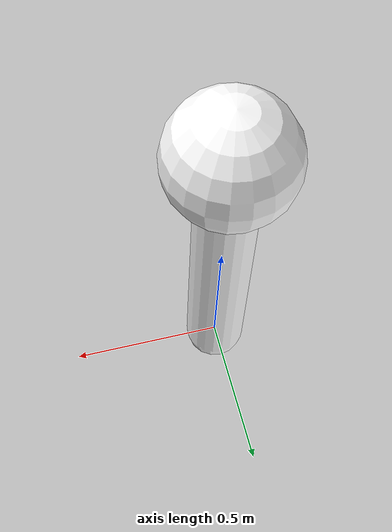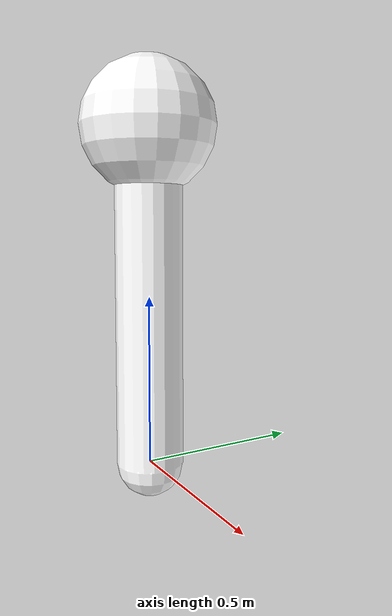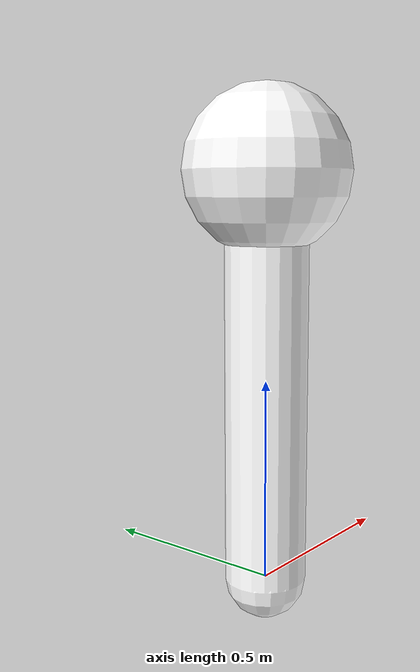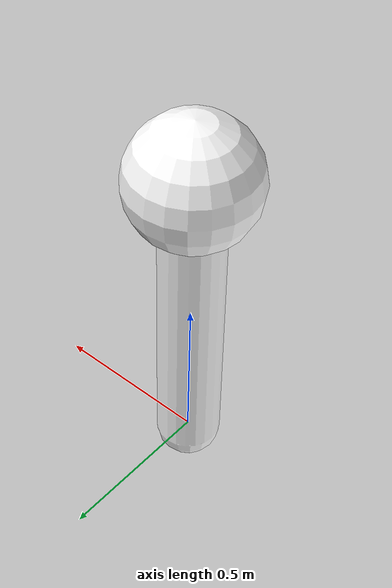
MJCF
<mujoco model="cartpole">
  <compiler coordinate="local" inertiafromgeom="true"/>
  <!--  create a default joint type for cartpole model-->
  <default>
    <joint damping="0.2"/>
    <!--    two geoms can collide if the contype of one and the conaffinity of the other have a common bit set to 1 in their 32 bit -->
    <geom contype="3" conaffinity="3" friction="0 0 0" rgba="0.7 0.7 0 1"/>
  </default>
  <!--  time step is for internal simulation-->
  <option gravity="1e-5 0 -9.81" integrator="Euler" timestep="0.05"/>
  <!--  size of pre-allocated stack-->
  <size nstack="3000"/>
  <!--  start outermost environment or arena-->
  <worldbody>
    <!--    fixed camera glued to frame of static world body-->
    <camera name="rgb" mode="fixed" pos="0 4 0.0" euler="-90 0 180"/>
    <body name="cart" pos="0 0 0">
      <!-- place a joint at the center of the cart-pole for moving it l and r-->
      <joint name="slider" axis="1 0 0" limited="true" margin="0.01" pos="0 0 0" range="-100 100" type="slide"/>
      <geom pos="0 0 0" quat="0.707 0 0.707 0" rgba="1 1 1 1" size="0.01 0.01" mass="1." type="capsule" name="gcart"/>
      <body name="pole" pos="0 0 0">
        <joint axis="0 1 0" name="hinge" pos="0 0 0" type="hinge"/>
        <geom fromto="0 0 0 0 0 1.0" name="gpole" rgba="1 1 1 1" mass="1." size="0.1 0.5" type="capsule"/>
        <body name="mass" pos="0 0 1.">
            <geom size="0.2 0.2" mass="0" rgba="1 1 1 1" type="sphere" name="gmass" contype="3" conaffinity="3"/>
            <site name="tip" pos="0 0 0." size="0.01 0.01"/>
        </body>
      </body>
    </body>
  </worldbody>
  <actuator>
    <motor ctrllimited="true" ctrlrange="-1 1" gear="40" joint="slider" name="slide"/>
  </actuator>
</mujoco>
